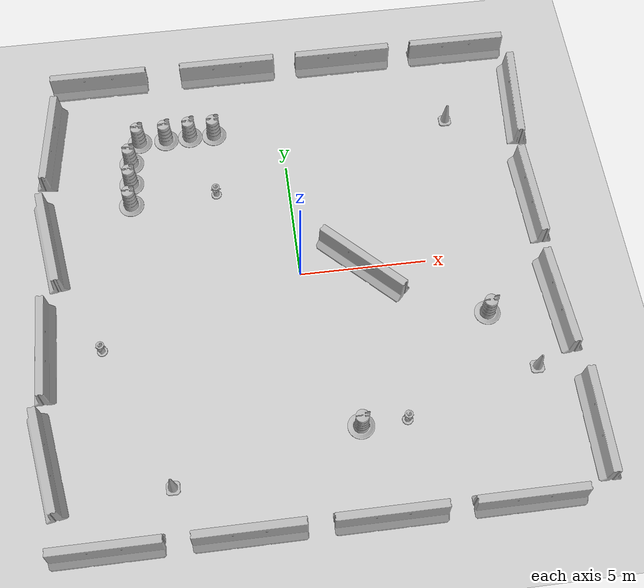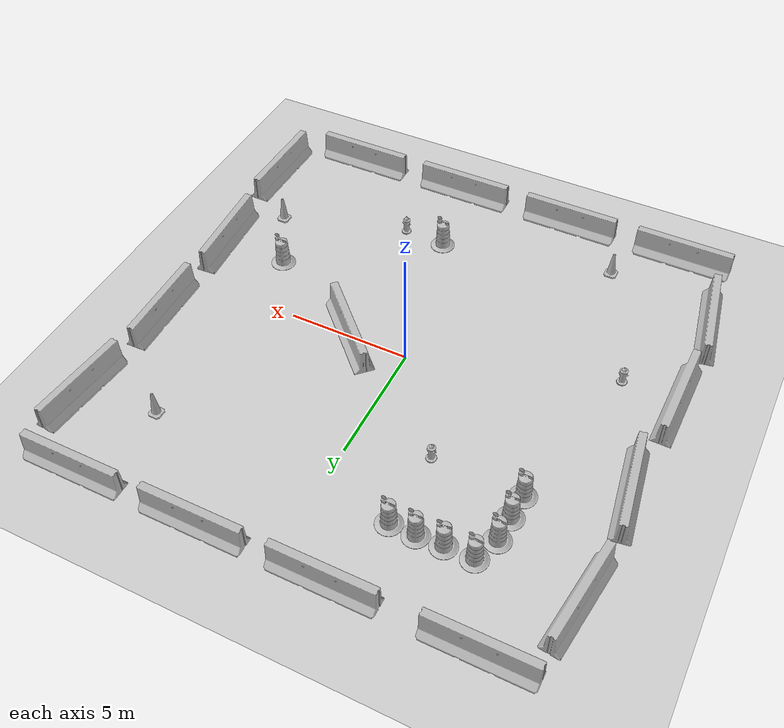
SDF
<sdf version="1.7">
 <world name="default">
  <light name="sun" type="directional">
   <pose>0 0 10 0 -0 0</pose>
   <diffuse>0.8 0.8 0.8 1</diffuse>
   <specular>0.2 0.2 0.2 1</specular>
   <attenuation>
    <range>1000</range>
    <constant>0.9</constant>
    <linear>0.01</linear>
    <quadratic>0.001</quadratic>
   </attenuation>
   <direction>-0.5 0.1 -0.9</direction>
   <spot><inner_angle>0</inner_angle><outer_angle>0</outer_angle><falloff>0</falloff></spot>
  </light>
  <model name="ground_plane">
   <static>1</static>
   <link name="link">
    <collision name="collision">
     <geometry><plane><normal>0 0 1</normal><size>100 100</size></plane></geometry>
     <surface><friction><ode><mu>100</mu><mu2>50</mu2></ode></friction></surface>
    </collision>
    <visual name="visual">
     <cast_shadows>0</cast_shadows>
     <geometry><plane><normal>0 0 1</normal><size>100 100</size></plane></geometry>
     <material>
      <script><uri>file://media/materials/scripts/gazebo.material</uri><name>Gazebo/Grey</name></script>
     </material>
    </visual>
    <velocity_decay><linear>0</linear><angular>0</angular></velocity_decay>
   </link>
  </model>
  <physics type="ode">
   <max_step_size>0.01</max_step_size>
   <real_time_factor>1</real_time_factor>
   <real_time_update_rate>100</real_time_update_rate>
  </physics>
  <scene><ambient>0.4 0.4 0.4 1</ambient><background>0.7 0.7 0.7 1</background><shadows>1</shadows></scene>
  <model name="jersey_barrier">
   <static>1</static>
   <link name="link">
    <visual name="visual">
     <geometry><mesh><uri>model://jersey_barrier/meshes/jersey_barrier.dae</uri></mesh></geometry>
    </visual>
    <collision name="upright">
     <pose>0 0 0.5715 0 -0 0</pose>
     <geometry><box><size>4.06542 0.3063 1.143</size></box></geometry>
    </collision>
    <collision name="base">
     <pose>0 0 0.032258 0 -0 0</pose>
     <geometry><box><size>4.06542 0.8107 0.064516</size></box></geometry>
    </collision>
    <collision name="base2">
     <pose>0 0 0.1 0 -0 0</pose>
     <geometry><box><size>4.06542 0.65 0.1</size></box></geometry>
    </collision>
    <collision name="base3">
     <pose>0 0 0.2 0 -0 0</pose>
     <geometry><box><size>4.06542 0.5 0.1</size></box></geometry>
    </collision>
    <collision name="left-angle">
     <pose>0 -0.224 0.2401 0.9 -0 0</pose>
     <geometry><box><size>4.06542 0.5 0.064516</size></box></geometry>
    </collision>
    <collision name="right-angle">
     <pose>0 0.224 0.2401 -0.9 0 0</pose>
     <geometry><box><size>4.06542 0.5 0.064516</size></box></geometry>
    </collision>
    <velocity_decay><linear>0</linear><angular>0</angular></velocity_decay>
   </link>
   <pose>-8 -10 0 0 -0 0</pose>
  </model>
  <model name="jersey_barrier_0">
   <static>1</static>
   <link name="link">
    <visual name="visual">
     <geometry><mesh><uri>model://jersey_barrier/meshes/jersey_barrier.dae</uri></mesh></geometry>
    </visual>
    <collision name="upright">
     <pose>0 0 0.5715 0 -0 0</pose>
     <geometry><box><size>4.06542 0.3063 1.143</size></box></geometry>
    </collision>
    <collision name="base">
     <pose>0 0 0.032258 0 -0 0</pose>
     <geometry><box><size>4.06542 0.8107 0.064516</size></box></geometry>
    </collision>
    <collision name="base2">
     <pose>0 0 0.1 0 -0 0</pose>
     <geometry><box><size>4.06542 0.65 0.1</size></box></geometry>
    </collision>
    <collision name="base3">
     <pose>0 0 0.2 0 -0 0</pose>
     <geometry><box><size>4.06542 0.5 0.1</size></box></geometry>
    </collision>
    <collision name="left-angle">
     <pose>0 -0.224 0.2401 0.9 -0 0</pose>
     <geometry><box><size>4.06542 0.5 0.064516</size></box></geometry>
    </collision>
    <collision name="right-angle">
     <pose>0 0.224 0.2401 -0.9 0 0</pose>
     <geometry><box><size>4.06542 0.5 0.064516</size></box></geometry>
    </collision>
    <velocity_decay><linear>0</linear><angular>0</angular></velocity_decay>
   </link>
   <pose>-3 -10 0 0 -0 0</pose>
  </model>
  <model name="jersey_barrier_1">
   <static>1</static>
   <link name="link">
    <visual name="visual">
     <geometry><mesh><uri>model://jersey_barrier/meshes/jersey_barrier.dae</uri></mesh></geometry>
    </visual>
    <collision name="upright">
     <pose>0 0 0.5715 0 -0 0</pose>
     <geometry><box><size>4.06542 0.3063 1.143</size></box></geometry>
    </collision>
    <collision name="base">
     <pose>0 0 0.032258 0 -0 0</pose>
     <geometry><box><size>4.06542 0.8107 0.064516</size></box></geometry>
    </collision>
    <collision name="base2">
     <pose>0 0 0.1 0 -0 0</pose>
     <geometry><box><size>4.06542 0.65 0.1</size></box></geometry>
    </collision>
    <collision name="base3">
     <pose>0 0 0.2 0 -0 0</pose>
     <geometry><box><size>4.06542 0.5 0.1</size></box></geometry>
    </collision>
    <collision name="left-angle">
     <pose>0 -0.224 0.2401 0.9 -0 0</pose>
     <geometry><box><size>4.06542 0.5 0.064516</size></box></geometry>
    </collision>
    <collision name="right-angle">
     <pose>0 0.224 0.2401 -0.9 0 0</pose>
     <geometry><box><size>4.06542 0.5 0.064516</size></box></geometry>
    </collision>
    <velocity_decay><linear>0</linear><angular>0</angular></velocity_decay>
   </link>
   <pose>2 -10 0 0 -0 0</pose>
  </model>
  <model name="jersey_barrier_2">
   <static>1</static>
   <link name="link">
    <visual name="visual">
     <geometry><mesh><uri>model://jersey_barrier/meshes/jersey_barrier.dae</uri></mesh></geometry>
    </visual>
    <collision name="upright">
     <pose>0 0 0.5715 0 -0 0</pose>
     <geometry><box><size>4.06542 0.3063 1.143</size></box></geometry>
    </collision>
    <collision name="base">
     <pose>0 0 0.032258 0 -0 0</pose>
     <geometry><box><size>4.06542 0.8107 0.064516</size></box></geometry>
    </collision>
    <collision name="base2">
     <pose>0 0 0.1 0 -0 0</pose>
     <geometry><box><size>4.06542 0.65 0.1</size></box></geometry>
    </collision>
    <collision name="base3">
     <pose>0 0 0.2 0 -0 0</pose>
     <geometry><box><size>4.06542 0.5 0.1</size></box></geometry>
    </collision>
    <collision name="left-angle">
     <pose>0 -0.224 0.2401 0.9 -0 0</pose>
     <geometry><box><size>4.06542 0.5 0.064516</size></box></geometry>
    </collision>
    <collision name="right-angle">
     <pose>0 0.224 0.2401 -0.9 0 0</pose>
     <geometry><box><size>4.06542 0.5 0.064516</size></box></geometry>
    </collision>
    <velocity_decay><linear>0</linear><angular>0</angular></velocity_decay>
   </link>
   <pose>7 -10 0 0 -0 0</pose>
  </model>
  <model name="jersey_barrier_3">
   <static>1</static>
   <link name="link">
    <visual name="visual">
     <geometry><mesh><uri>model://jersey_barrier/meshes/jersey_barrier.dae</uri></mesh></geometry>
    </visual>
    <collision name="upright">
     <pose>0 0 0.5715 0 -0 0</pose>
     <geometry><box><size>4.06542 0.3063 1.143</size></box></geometry>
    </collision>
    <collision name="base">
     <pose>0 0 0.032258 0 -0 0</pose>
     <geometry><box><size>4.06542 0.8107 0.064516</size></box></geometry>
    </collision>
    <collision name="base2">
     <pose>0 0 0.1 0 -0 0</pose>
     <geometry><box><size>4.06542 0.65 0.1</size></box></geometry>
    </collision>
    <collision name="base3">
     <pose>0 0 0.2 0 -0 0</pose>
     <geometry><box><size>4.06542 0.5 0.1</size></box></geometry>
    </collision>
    <collision name="left-angle">
     <pose>0 -0.224 0.2401 0.9 -0 0</pose>
     <geometry><box><size>4.06542 0.5 0.064516</size></box></geometry>
    </collision>
    <collision name="right-angle">
     <pose>0 0.224 0.2401 -0.9 0 0</pose>
     <geometry><box><size>4.06542 0.5 0.064516</size></box></geometry>
    </collision>
    <velocity_decay><linear>0</linear><angular>0</angular></velocity_decay>
   </link>
   <pose>-7.50675 10 0 0 -0 0</pose>
  </model>
  <model name="jersey_barrier_4">
   <static>1</static>
   <link name="link">
    <visual name="visual">
     <geometry><mesh><uri>model://jersey_barrier/meshes/jersey_barrier.dae</uri></mesh></geometry>
    </visual>
    <collision name="upright">
     <pose>0 0 0.5715 0 -0 0</pose>
     <geometry><box><size>4.06542 0.3063 1.143</size></box></geometry>
    </collision>
    <collision name="base">
     <pose>0 0 0.032258 0 -0 0</pose>
     <geometry><box><size>4.06542 0.8107 0.064516</size></box></geometry>
    </collision>
    <collision name="base2">
     <pose>0 0 0.1 0 -0 0</pose>
     <geometry><box><size>4.06542 0.65 0.1</size></box></geometry>
    </collision>
    <collision name="base3">
     <pose>0 0 0.2 0 -0 0</pose>
     <geometry><box><size>4.06542 0.5 0.1</size></box></geometry>
    </collision>
    <collision name="left-angle">
     <pose>0 -0.224 0.2401 0.9 -0 0</pose>
     <geometry><box><size>4.06542 0.5 0.064516</size></box></geometry>
    </collision>
    <collision name="right-angle">
     <pose>0 0.224 0.2401 -0.9 0 0</pose>
     <geometry><box><size>4.06542 0.5 0.064516</size></box></geometry>
    </collision>
    <velocity_decay><linear>0</linear><angular>0</angular></velocity_decay>
   </link>
   <pose>-2 10 0 0 -0 0</pose>
  </model>
  <model name="jersey_barrier_5">
   <static>1</static>
   <link name="link">
    <visual name="visual">
     <geometry><mesh><uri>model://jersey_barrier/meshes/jersey_barrier.dae</uri></mesh></geometry>
    </visual>
    <collision name="upright">
     <pose>0 0 0.5715 0 -0 0</pose>
     <geometry><box><size>4.06542 0.3063 1.143</size></box></geometry>
    </collision>
    <collision name="base">
     <pose>0 0 0.032258 0 -0 0</pose>
     <geometry><box><size>4.06542 0.8107 0.064516</size></box></geometry>
    </collision>
    <collision name="base2">
     <pose>0 0 0.1 0 -0 0</pose>
     <geometry><box><size>4.06542 0.65 0.1</size></box></geometry>
    </collision>
    <collision name="base3">
     <pose>0 0 0.2 0 -0 0</pose>
     <geometry><box><size>4.06542 0.5 0.1</size></box></geometry>
    </collision>
    <collision name="left-angle">
     <pose>0 -0.224 0.2401 0.9 -0 0</pose>
     <geometry><box><size>4.06542 0.5 0.064516</size></box></geometry>
    </collision>
    <collision name="right-angle">
     <pose>0 0.224 0.2401 -0.9 0 0</pose>
     <geometry><box><size>4.06542 0.5 0.064516</size></box></geometry>
    </collision>
    <velocity_decay><linear>0</linear><angular>0</angular></velocity_decay>
   </link>
   <pose>3 10 0 0 -0 0</pose>
  </model>
  <model name="jersey_barrier_6">
   <static>1</static>
   <link name="link">
    <visual name="visual">
     <geometry><mesh><uri>model://jersey_barrier/meshes/jersey_barrier.dae</uri></mesh></geometry>
    </visual>
    <collision name="upright">
     <pose>0 0 0.5715 0 -0 0</pose>
     <geometry><box><size>4.06542 0.3063 1.143</size></box></geometry>
    </collision>
    <collision name="base">
     <pose>0 0 0.032258 0 -0 0</pose>
     <geometry><box><size>4.06542 0.8107 0.064516</size></box></geometry>
    </collision>
    <collision name="base2">
     <pose>0 0 0.1 0 -0 0</pose>
     <geometry><box><size>4.06542 0.65 0.1</size></box></geometry>
    </collision>
    <collision name="base3">
     <pose>0 0 0.2 0 -0 0</pose>
     <geometry><box><size>4.06542 0.5 0.1</size></box></geometry>
    </collision>
    <collision name="left-angle">
     <pose>0 -0.224 0.2401 0.9 -0 0</pose>
     <geometry><box><size>4.06542 0.5 0.064516</size></box></geometry>
    </collision>
    <collision name="right-angle">
     <pose>0 0.224 0.2401 -0.9 0 0</pose>
     <geometry><box><size>4.06542 0.5 0.064516</size></box></geometry>
    </collision>
    <velocity_decay><linear>0</linear><angular>0</angular></velocity_decay>
   </link>
   <pose>8 10 0 0 -0 0</pose>
  </model>
  <model name="jersey_barrier_7">
   <static>1</static>
   <link name="link">
    <visual name="visual">
     <geometry><mesh><uri>model://jersey_barrier/meshes/jersey_barrier.dae</uri></mesh></geometry>
    </visual>
    <collision name="upright">
     <pose>0 0 0.5715 0 -0 0</pose>
     <geometry><box><size>4.06542 0.3063 1.143</size></box></geometry>
    </collision>
    <collision name="base">
     <pose>0 0 0.032258 0 -0 0</pose>
     <geometry><box><size>4.06542 0.8107 0.064516</size></box></geometry>
    </collision>
    <collision name="base2">
     <pose>0 0 0.1 0 -0 0</pose>
     <geometry><box><size>4.06542 0.65 0.1</size></box></geometry>
    </collision>
    <collision name="base3">
     <pose>0 0 0.2 0 -0 0</pose>
     <geometry><box><size>4.06542 0.5 0.1</size></box></geometry>
    </collision>
    <collision name="left-angle">
     <pose>0 -0.224 0.2401 0.9 -0 0</pose>
     <geometry><box><size>4.06542 0.5 0.064516</size></box></geometry>
    </collision>
    <collision name="right-angle">
     <pose>0 0.224 0.2401 -0.9 0 0</pose>
     <geometry><box><size>4.06542 0.5 0.064516</size></box></geometry>
    </collision>
    <velocity_decay><linear>0</linear><angular>0</angular></velocity_decay>
   </link>
   <pose>9.74902 -2.57759 0 0 -0 1.64</pose>
  </model>
  <model name="jersey_barrier_8">
   <static>1</static>
   <link name="link">
    <visual name="visual">
     <geometry><mesh><uri>model://jersey_barrier/meshes/jersey_barrier.dae</uri></mesh></geometry>
    </visual>
    <collision name="upright">
     <pose>0 0 0.5715 0 -0 0</pose>
     <geometry><box><size>4.06542 0.3063 1.143</size></box></geometry>
    </collision>
    <collision name="base">
     <pose>0 0 0.032258 0 -0 0</pose>
     <geometry><box><size>4.06542 0.8107 0.064516</size></box></geometry>
    </collision>
    <collision name="base2">
     <pose>0 0 0.1 0 -0 0</pose>
     <geometry><box><size>4.06542 0.65 0.1</size></box></geometry>
    </collision>
    <collision name="base3">
     <pose>0 0 0.2 0 -0 0</pose>
     <geometry><box><size>4.06542 0.5 0.1</size></box></geometry>
    </collision>
    <collision name="left-angle">
     <pose>0 -0.224 0.2401 0.9 -0 0</pose>
     <geometry><box><size>4.06542 0.5 0.064516</size></box></geometry>
    </collision>
    <collision name="right-angle">
     <pose>0 0.224 0.2401 -0.9 0 0</pose>
     <geometry><box><size>4.06542 0.5 0.064516</size></box></geometry>
    </collision>
    <velocity_decay><linear>0</linear><angular>0</angular></velocity_decay>
   </link>
   <pose>9.70141 2.24369 0 0 -0 1.6</pose>
  </model>
  <model name="jersey_barrier_9">
   <static>1</static>
   <link name="link">
    <visual name="visual">
     <geometry><mesh><uri>model://jersey_barrier/meshes/jersey_barrier.dae</uri></mesh></geometry>
    </visual>
    <collision name="upright">
     <pose>0 0 0.5715 0 -0 0</pose>
     <geometry><box><size>4.06542 0.3063 1.143</size></box></geometry>
    </collision>
    <collision name="base">
     <pose>0 0 0.032258 0 -0 0</pose>
     <geometry><box><size>4.06542 0.8107 0.064516</size></box></geometry>
    </collision>
    <collision name="base2">
     <pose>0 0 0.1 0 -0 0</pose>
     <geometry><box><size>4.06542 0.65 0.1</size></box></geometry>
    </collision>
    <collision name="base3">
     <pose>0 0 0.2 0 -0 0</pose>
     <geometry><box><size>4.06542 0.5 0.1</size></box></geometry>
    </collision>
    <collision name="left-angle">
     <pose>0 -0.224 0.2401 0.9 -0 0</pose>
     <geometry><box><size>4.06542 0.5 0.064516</size></box></geometry>
    </collision>
    <collision name="right-angle">
     <pose>0 0.224 0.2401 -0.9 0 0</pose>
     <geometry><box><size>4.06542 0.5 0.064516</size></box></geometry>
    </collision>
    <velocity_decay><linear>0</linear><angular>0</angular></velocity_decay>
   </link>
   <pose>-10.0607 -6.69856 0 0 0 -1.4</pose>
  </model>
  <model name="jersey_barrier_10">
   <static>1</static>
   <link name="link">
    <visual name="visual">
     <geometry><mesh><uri>model://jersey_barrier/meshes/jersey_barrier.dae</uri></mesh></geometry>
    </visual>
    <collision name="upright">
     <pose>0 0 0.5715 0 -0 0</pose>
     <geometry><box><size>4.06542 0.3063 1.143</size></box></geometry>
    </collision>
    <collision name="base">
     <pose>0 0 0.032258 0 -0 0</pose>
     <geometry><box><size>4.06542 0.8107 0.064516</size></box></geometry>
    </collision>
    <collision name="base2">
     <pose>0 0 0.1 0 -0 0</pose>
     <geometry><box><size>4.06542 0.65 0.1</size></box></geometry>
    </collision>
    <collision name="base3">
     <pose>0 0 0.2 0 -0 0</pose>
     <geometry><box><size>4.06542 0.5 0.1</size></box></geometry>
    </collision>
    <collision name="left-angle">
     <pose>0 -0.224 0.2401 0.9 -0 0</pose>
     <geometry><box><size>4.06542 0.5 0.064516</size></box></geometry>
    </collision>
    <collision name="right-angle">
     <pose>0 0.224 0.2401 -0.9 0 0</pose>
     <geometry><box><size>4.06542 0.5 0.064516</size></box></geometry>
    </collision>
    <velocity_decay><linear>0</linear><angular>0</angular></velocity_decay>
   </link>
   <pose>-10.0774 -2.27159 0 0 -0 1.56</pose>
  </model>
  <model name="jersey_barrier_11">
   <static>1</static>
   <link name="link">
    <visual name="visual">
     <geometry><mesh><uri>model://jersey_barrier/meshes/jersey_barrier.dae</uri></mesh></geometry>
    </visual>
    <collision name="upright">
     <pose>0 0 0.5715 0 -0 0</pose>
     <geometry><box><size>4.06542 0.3063 1.143</size></box></geometry>
    </collision>
    <collision name="base">
     <pose>0 0 0.032258 0 -0 0</pose>
     <geometry><box><size>4.06542 0.8107 0.064516</size></box></geometry>
    </collision>
    <collision name="base2">
     <pose>0 0 0.1 0 -0 0</pose>
     <geometry><box><size>4.06542 0.65 0.1</size></box></geometry>
    </collision>
    <collision name="base3">
     <pose>0 0 0.2 0 -0 0</pose>
     <geometry><box><size>4.06542 0.5 0.1</size></box></geometry>
    </collision>
    <collision name="left-angle">
     <pose>0 -0.224 0.2401 0.9 -0 0</pose>
     <geometry><box><size>4.06542 0.5 0.064516</size></box></geometry>
    </collision>
    <collision name="right-angle">
     <pose>0 0.224 0.2401 -0.9 0 0</pose>
     <geometry><box><size>4.06542 0.5 0.064516</size></box></geometry>
    </collision>
    <velocity_decay><linear>0</linear><angular>0</angular></velocity_decay>
   </link>
   <pose>-9.77013 2.34791 0 0 -0 1.72</pose>
  </model>
  <model name="jersey_barrier_12">
   <static>1</static>
   <link name="link">
    <visual name="visual">
     <geometry><mesh><uri>model://jersey_barrier/meshes/jersey_barrier.dae</uri></mesh></geometry>
    </visual>
    <collision name="upright">
     <pose>0 0 0.5715 0 -0 0</pose>
     <geometry><box><size>4.06542 0.3063 1.143</size></box></geometry>
    </collision>
    <collision name="base">
     <pose>0 0 0.032258 0 -0 0</pose>
     <geometry><box><size>4.06542 0.8107 0.064516</size></box></geometry>
    </collision>
    <collision name="base2">
     <pose>0 0 0.1 0 -0 0</pose>
     <geometry><box><size>4.06542 0.65 0.1</size></box></geometry>
    </collision>
    <collision name="base3">
     <pose>0 0 0.2 0 -0 0</pose>
     <geometry><box><size>4.06542 0.5 0.1</size></box></geometry>
    </collision>
    <collision name="left-angle">
     <pose>0 -0.224 0.2401 0.9 -0 0</pose>
     <geometry><box><size>4.06542 0.5 0.064516</size></box></geometry>
    </collision>
    <collision name="right-angle">
     <pose>0 0.224 0.2401 -0.9 0 0</pose>
     <geometry><box><size>4.06542 0.5 0.064516</size></box></geometry>
    </collision>
    <velocity_decay><linear>0</linear><angular>0</angular></velocity_decay>
   </link>
   <pose>10.0879 -7.62159 0 0 -0 1.56</pose>
  </model>
  <model name="jersey_barrier_13">
   <static>1</static>
   <link name="link">
    <visual name="visual">
     <geometry><mesh><uri>model://jersey_barrier/meshes/jersey_barrier.dae</uri></mesh></geometry>
    </visual>
    <collision name="upright">
     <pose>0 0 0.5715 0 -0 0</pose>
     <geometry><box><size>4.06542 0.3063 1.143</size></box></geometry>
    </collision>
    <collision name="base">
     <pose>0 0 0.032258 0 -0 0</pose>
     <geometry><box><size>4.06542 0.8107 0.064516</size></box></geometry>
    </collision>
    <collision name="base2">
     <pose>0 0 0.1 0 -0 0</pose>
     <geometry><box><size>4.06542 0.65 0.1</size></box></geometry>
    </collision>
    <collision name="base3">
     <pose>0 0 0.2 0 -0 0</pose>
     <geometry><box><size>4.06542 0.5 0.1</size></box></geometry>
    </collision>
    <collision name="left-angle">
     <pose>0 -0.224 0.2401 0.9 -0 0</pose>
     <geometry><box><size>4.06542 0.5 0.064516</size></box></geometry>
    </collision>
    <collision name="right-angle">
     <pose>0 0.224 0.2401 -0.9 0 0</pose>
     <geometry><box><size>4.06542 0.5 0.064516</size></box></geometry>
    </collision>
    <velocity_decay><linear>0</linear><angular>0</angular></velocity_decay>
   </link>
   <pose>10 7 0 0 -0 1.48</pose>
  </model>
  <model name="jersey_barrier_14">
   <static>1</static>
   <link name="link">
    <visual name="visual">
     <geometry><mesh><uri>model://jersey_barrier/meshes/jersey_barrier.dae</uri></mesh></geometry>
    </visual>
    <collision name="upright">
     <pose>0 0 0.5715 0 -0 0</pose>
     <geometry><box><size>4.06542 0.3063 1.143</size></box></geometry>
    </collision>
    <collision name="base">
     <pose>0 0 0.032258 0 -0 0</pose>
     <geometry><box><size>4.06542 0.8107 0.064516</size></box></geometry>
    </collision>
    <collision name="base2">
     <pose>0 0 0.1 0 -0 0</pose>
     <geometry><box><size>4.06542 0.65 0.1</size></box></geometry>
    </collision>
    <collision name="base3">
     <pose>0 0 0.2 0 -0 0</pose>
     <geometry><box><size>4.06542 0.5 0.1</size></box></geometry>
    </collision>
    <collision name="left-angle">
     <pose>0 -0.224 0.2401 0.9 -0 0</pose>
     <geometry><box><size>4.06542 0.5 0.064516</size></box></geometry>
    </collision>
    <collision name="right-angle">
     <pose>0 0.224 0.2401 -0.9 0 0</pose>
     <geometry><box><size>4.06542 0.5 0.064516</size></box></geometry>
    </collision>
    <velocity_decay><linear>0</linear><angular>0</angular></velocity_decay>
   </link>
   <pose>-9.64482 7.05946 0 0 -0 1.44</pose>
  </model>
  <model name="fire_hydrant">
   <static>1</static>
   <link name="link">
    <collision name="collision">
     <geometry><mesh><uri>model://fire_hydrant/meshes/fire_hydrant.dae</uri></mesh></geometry>
    </collision>
    <visual name="visual">
     <geometry><mesh><uri>model://fire_hydrant/meshes/fire_hydrant.dae</uri></mesh></geometry>
    </visual>
    <velocity_decay><linear>0</linear><angular>0</angular></velocity_decay>
   </link>
   <pose>3.18024 -6.51118 0 0 -0 0</pose>
  </model>
  <model name="fire_hydrant_0">
   <static>1</static>
   <link name="link">
    <collision name="collision">
     <geometry><mesh><uri>model://fire_hydrant/meshes/fire_hydrant.dae</uri></mesh></geometry>
    </collision>
    <visual name="visual">
     <geometry><mesh><uri>model://fire_hydrant/meshes/fire_hydrant.dae</uri></mesh></geometry>
    </visual>
    <velocity_decay><linear>0</linear><angular>0</angular></velocity_decay>
   </link>
   <pose>-3 4 0 0 -0 0</pose>
  </model>
  <model name="fire_hydrant_1">
   <static>1</static>
   <link name="link">
    <collision name="collision">
     <geometry><mesh><uri>model://fire_hydrant/meshes/fire_hydrant.dae</uri></mesh></geometry>
    </collision>
    <visual name="visual">
     <geometry><mesh><uri>model://fire_hydrant/meshes/fire_hydrant.dae</uri></mesh></geometry>
    </visual>
    <velocity_decay><linear>0</linear><angular>0</angular></velocity_decay>
   </link>
   <pose>-7.90686 -2.41363 0 0 -0 0</pose>
  </model>
  <model name="jersey_barrier_15">
   <static>1</static>
   <link name="link">
    <visual name="visual">
     <geometry><mesh><uri>model://jersey_barrier/meshes/jersey_barrier.dae</uri></mesh></geometry>
    </visual>
    <collision name="upright">
     <pose>0 0 0.5715 0 -0 0</pose>
     <geometry><box><size>4.06542 0.3063 1.143</size></box></geometry>
    </collision>
    <collision name="base">
     <pose>0 0 0.032258 0 -0 0</pose>
     <geometry><box><size>4.06542 0.8107 0.064516</size></box></geometry>
    </collision>
    <collision name="base2">
     <pose>0 0 0.1 0 -0 0</pose>
     <geometry><box><size>4.06542 0.65 0.1</size></box></geometry>
    </collision>
    <collision name="base3">
     <pose>0 0 0.2 0 -0 0</pose>
     <geometry><box><size>4.06542 0.5 0.1</size></box></geometry>
    </collision>
    <collision name="left-angle">
     <pose>0 -0.224 0.2401 0.9 -0 0</pose>
     <geometry><box><size>4.06542 0.5 0.064516</size></box></geometry>
    </collision>
    <collision name="right-angle">
     <pose>0 0.224 0.2401 -0.9 0 0</pose>
     <geometry><box><size>4.06542 0.5 0.064516</size></box></geometry>
    </collision>
    <velocity_decay><linear>0</linear><angular>0</angular></velocity_decay>
   </link>
   <pose>2.45495 0 0 0 -0 2.36</pose>
  </model>
  <model name="Construction Cone">
   <link name="link">
    <collision name="collision">
     <geometry>
      <mesh><scale>10 10 10</scale><uri>model://construction_cone/meshes/construction_cone.dae</uri></mesh>
     </geometry>
    </collision>
    <visual name="visual">
     <geometry>
      <mesh><scale>10 10 10</scale><uri>model://construction_cone/meshes/construction_cone.dae</uri></mesh>
     </geometry>
    </visual>
    <velocity_decay><linear>0</linear><angular>0</angular></velocity_decay>
    <inertial>
     <inertia><ixx>1</ixx><ixy>0</ixy><ixz>0</ixz><iyy>1</iyy><iyz>0</iyz><izz>1</izz></inertia>
     <mass>1</mass>
    </inertial>
   </link>
   <pose>-5.59121 -8 -1e-06 -4e-06 2e-06 0</pose>
   <static>0</static>
  </model>
  <model name="Construction Barrel">
   <link name="link">
    <inertial>
     <pose>0 0 0.4 0 -0 0</pose>
     <mass>500</mass>
     <inertia><ixx>51.2096</ixx><iyy>51.2096</iyy><izz>25</izz><ixy>0</ixy><ixz>0</ixz><iyz>0</iyz></inertia>
    </inertial>
    <collision name="collision">
     <geometry><mesh><uri>model://construction_barrel/meshes/construction_barrel.dae</uri></mesh></geometry>
    </collision>
    <visual name="visual">
     <geometry><mesh><uri>model://construction_barrel/meshes/construction_barrel.dae</uri></mesh></geometry>
    </visual>
    <velocity_decay><linear>0</linear><angular>0</angular></velocity_decay>
   </link>
   <pose>7.00018 -2.54637 -0.000124 0.000484 -1.5e-05 5.1e-05</pose>
   <static>0</static>
  </model>
  <model name="Construction Cone_0">
   <link name="link">
    <collision name="collision">
     <geometry>
      <mesh><scale>10 10 10</scale><uri>model://construction_cone/meshes/construction_cone.dae</uri></mesh>
     </geometry>
    </collision>
    <visual name="visual">
     <geometry>
      <mesh><scale>10 10 10</scale><uri>model://construction_cone/meshes/construction_cone.dae</uri></mesh>
     </geometry>
    </visual>
    <velocity_decay><linear>0</linear><angular>0</angular></velocity_decay>
    <inertial>
     <inertia><ixx>1</ixx><ixy>0</ixy><ixz>0</ixz><iyy>1</iyy><iyz>0</iyz><izz>1</izz></inertia>
     <mass>1</mass>
    </inertial>
   </link>
   <pose>6.99685 6.55732 -1e-06 -4e-06 2e-06 -0.007012</pose>
   <static>0</static>
  </model>
  <model name="Construction Barrel_0">
   <link name="link">
    <inertial>
     <pose>0 0 0.4 0 -0 0</pose>
     <mass>500</mass>
     <inertia><ixx>51.2096</ixx><iyy>51.2096</iyy><izz>25</izz><ixy>0</ixy><ixz>0</ixz><iyz>0</iyz></inertia>
    </inertial>
    <collision name="collision">
     <geometry><mesh><uri>model://construction_barrel/meshes/construction_barrel.dae</uri></mesh></geometry>
    </collision>
    <visual name="visual">
     <geometry><mesh><uri>model://construction_barrel/meshes/construction_barrel.dae</uri></mesh></geometry>
    </visual>
    <velocity_decay><linear>0</linear><angular>0</angular></velocity_decay>
   </link>
   <pose>1.45177 -6.51128 -9e-05 0.000308 -0.000178 2.5e-05</pose>
   <static>0</static>
  </model>
  <model name="Construction Barrel_1">
   <link name="link">
    <inertial>
     <pose>0 0 0.4 0 -0 0</pose>
     <mass>500</mass>
     <inertia><ixx>51.2096</ixx><iyy>51.2096</iyy><izz>25</izz><ixy>0</ixy><ixz>0</ixz><iyz>0</iyz></inertia>
    </inertial>
    <collision name="collision">
     <geometry><mesh><uri>model://construction_barrel/meshes/construction_barrel.dae</uri></mesh></geometry>
    </collision>
    <visual name="visual">
     <geometry><mesh><uri>model://construction_barrel/meshes/construction_barrel.dae</uri></mesh></geometry>
    </visual>
    <velocity_decay><linear>0</linear><angular>0</angular></velocity_decay>
   </link>
   <pose>-6.50486 3.9826 -8.8e-05 -8.2e-05 0.000332 -0.009563</pose>
   <static>0</static>
  </model>
  <model name="Construction Barrel_2">
   <link name="link">
    <inertial>
     <pose>0 0 0.4 0 -0 0</pose>
     <mass>500</mass>
     <inertia><ixx>51.2096</ixx><iyy>51.2096</iyy><izz>25</izz><ixy>0</ixy><ixz>0</ixz><iyz>0</iyz></inertia>
    </inertial>
    <collision name="collision">
     <geometry><mesh><uri>model://construction_barrel/meshes/construction_barrel.dae</uri></mesh></geometry>
    </collision>
    <visual name="visual">
     <geometry><mesh><uri>model://construction_barrel/meshes/construction_barrel.dae</uri></mesh></geometry>
    </visual>
    <velocity_decay><linear>0</linear><angular>0</angular></velocity_decay>
   </link>
   <pose>-6.45066 4.99639 -9e-05 0.000306 -0.000177 0.064988</pose>
   <static>0</static>
  </model>
  <model name="Construction Barrel_3">
   <link name="link">
    <inertial>
     <pose>0 0 0.4 0 -0 0</pose>
     <mass>500</mass>
     <inertia><ixx>51.2096</ixx><iyy>51.2096</iyy><izz>25</izz><ixy>0</ixy><ixz>0</ixz><iyz>0</iyz></inertia>
    </inertial>
    <collision name="collision">
     <geometry><mesh><uri>model://construction_barrel/meshes/construction_barrel.dae</uri></mesh></geometry>
    </collision>
    <visual name="visual">
     <geometry><mesh><uri>model://construction_barrel/meshes/construction_barrel.dae</uri></mesh></geometry>
    </visual>
    <velocity_decay><linear>0</linear><angular>0</angular></velocity_decay>
   </link>
   <pose>-6.40174 6.01111 -1.6e-05 -0.000242 -3.2e-05 -0.120753</pose>
   <static>0</static>
  </model>
  <model name="Construction Barrel_4">
   <link name="link">
    <inertial>
     <pose>0 0 0.4 0 -0 0</pose>
     <mass>500</mass>
     <inertia><ixx>51.2096</ixx><iyy>51.2096</iyy><izz>25</izz><ixy>0</ixy><ixz>0</ixz><iyz>0</iyz></inertia>
    </inertial>
    <collision name="collision">
     <geometry><mesh><uri>model://construction_barrel/meshes/construction_barrel.dae</uri></mesh></geometry>
    </collision>
    <visual name="visual">
     <geometry><mesh><uri>model://construction_barrel/meshes/construction_barrel.dae</uri></mesh></geometry>
    </visual>
    <velocity_decay><linear>0</linear><angular>0</angular></velocity_decay>
   </link>
   <pose>-6.0064 7.00882 -6.2e-05 0.000201 -9.5e-05 -0.04954</pose>
   <static>0</static>
  </model>
  <model name="Construction Barrel_5">
   <link name="link">
    <inertial>
     <pose>0 0 0.4 0 -0 0</pose>
     <mass>500</mass>
     <inertia><ixx>51.2096</ixx><iyy>51.2096</iyy><izz>25</izz><ixy>0</ixy><ixz>0</ixz><iyz>0</iyz></inertia>
    </inertial>
    <collision name="collision">
     <geometry><mesh><uri>model://construction_barrel/meshes/construction_barrel.dae</uri></mesh></geometry>
    </collision>
    <visual name="visual">
     <geometry><mesh><uri>model://construction_barrel/meshes/construction_barrel.dae</uri></mesh></geometry>
    </visual>
    <velocity_decay><linear>0</linear><angular>0</angular></velocity_decay>
   </link>
   <pose>-4.88732 7.00851 -8.8e-05 -8.5e-05 0.000333 0.14525</pose>
   <static>0</static>
  </model>
  <model name="Construction Barrel_6">
   <link name="link">
    <inertial>
     <pose>0 0 0.4 0 -0 0</pose>
     <mass>500</mass>
     <inertia><ixx>51.2096</ixx><iyy>51.2096</iyy><izz>25</izz><ixy>0</ixy><ixz>0</ixz><iyz>0</iyz></inertia>
    </inertial>
    <collision name="collision">
     <geometry><mesh><uri>model://construction_barrel/meshes/construction_barrel.dae</uri></mesh></geometry>
    </collision>
    <visual name="visual">
     <geometry><mesh><uri>model://construction_barrel/meshes/construction_barrel.dae</uri></mesh></geometry>
    </visual>
    <velocity_decay><linear>0</linear><angular>0</angular></velocity_decay>
   </link>
   <pose>-3.87226 7.0478 -0.000197 -0.000746 0.0002 0.054514</pose>
   <static>0</static>
  </model>
  <model name="Construction Barrel_7">
   <link name="link">
    <inertial>
     <pose>0 0 0.4 0 -0 0</pose>
     <mass>500</mass>
     <inertia><ixx>51.2096</ixx><iyy>51.2096</iyy><izz>25</izz><ixy>0</ixy><ixz>0</ixz><iyz>0</iyz></inertia>
    </inertial>
    <collision name="collision">
     <geometry><mesh><uri>model://construction_barrel/meshes/construction_barrel.dae</uri></mesh></geometry>
    </collision>
    <visual name="visual">
     <geometry><mesh><uri>model://construction_barrel/meshes/construction_barrel.dae</uri></mesh></geometry>
    </visual>
    <velocity_decay><linear>0</linear><angular>0</angular></velocity_decay>
   </link>
   <pose>-2.85604 7.02346 -9.1e-05 0.000308 -0.000178 -0.033454</pose>
   <static>0</static>
  </model>
  <model name="Construction Cone_1">
   <link name="link">
    <collision name="collision">
     <geometry>
      <mesh><scale>10 10 10</scale><uri>model://construction_cone/meshes/construction_cone.dae</uri></mesh>
     </geometry>
    </collision>
    <visual name="visual">
     <geometry>
      <mesh><scale>10 10 10</scale><uri>model://construction_cone/meshes/construction_cone.dae</uri></mesh>
     </geometry>
    </visual>
    <velocity_decay><linear>0</linear><angular>0</angular></velocity_decay>
    <inertial>
     <inertia><ixx>1</ixx><ixy>0</ixy><ixz>0</ixz><iyy>1</iyy><iyz>0</iyz><izz>1</izz></inertia>
     <mass>1</mass>
    </inertial>
   </link>
   <pose>8.42887 -5 -0 0 -0 0</pose>
   <static>0</static>
  </model>
  <gravity>0 0 -9.8</gravity>
  <magnetic_field>6e-06 2.3e-05 -4.2e-05</magnetic_field>
  <atmosphere type="adiabatic"/>
  <spherical_coordinates>
   <surface_model>EARTH_WGS84</surface_model>
   <latitude_deg>0</latitude_deg>
   <longitude_deg>0</longitude_deg>
   <elevation>0</elevation>
   <heading_deg>0</heading_deg>
  </spherical_coordinates>
 </world>
</sdf>
